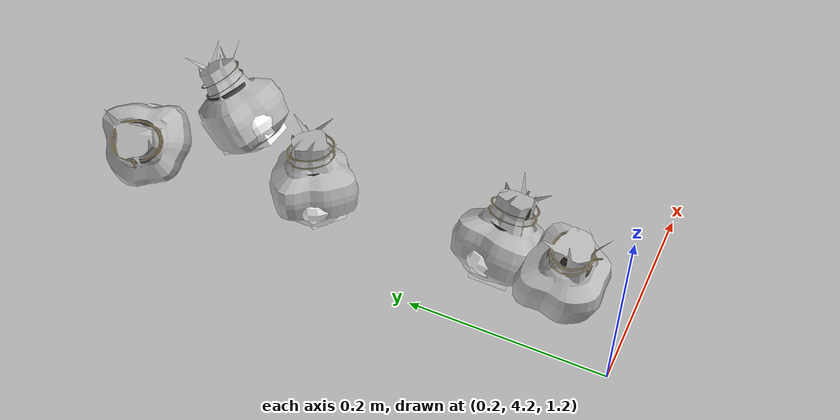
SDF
<sdf version="1.11">
 <world name="peach_orchard">
  <model name="ground">
   <static>true</static>
   <link name="link">
    <visual name="soil">
     <geometry><plane><normal>0 0 1</normal><size>32 22</size></plane></geometry>
     <material>
      <ambient>1 1 1 1</ambient>
      <diffuse>1 1 1 1</diffuse>
      <specular>0.1 0.1 0.1 1</specular>
      <pbr>
       <metal>
        <albedo_map>textures/soil_albedo.png</albedo_map>
        <normal_map type="tangent">textures/soil_normal.png</normal_map>
        <roughness>0.95</roughness>
        <metalness>0</metalness>
       </metal>
      </pbr>
     </material>
    </visual>
    <collision name="c_soil">
     <geometry><plane><normal>0 0 1</normal><size>32 22</size></plane></geometry>
    </collision>
   </link>
  </model>
  <model name="peach_tree_r2_t5_00">
   <pose>0.22 4.68335 1.27712 0 0.688618 -2.76887</pose>
   <static>true</static>
   <link name="bag">
    <visual name="bag_mesh">
     <pose>0 0 0.048431 0 0 -0</pose>
     <geometry>
      <mesh><uri>model://peach_sim/meshes/bagged_peach.glb</uri><scale>1.00445 1.20076 1.1007</scale></mesh>
     </geometry>
    </visual>
    <visual name="body">
     <pose>0 0 0.030431 0 0 0</pose>
     <geometry><ellipsoid><radii>0.0376667 0.0312199 0.0328654</radii></ellipsoid></geometry>
     <material>
      <ambient>1 1 1 1</ambient>
      <diffuse>1 1 1 1</diffuse>
      <specular>0.1 0.1 0.1 1</specular>
      <pbr>
       <metal>
        <albedo_map>textures/paper_bag_albedo.png</albedo_map>
        <normal_map type="tangent">textures/paper_bag_normal.png</normal_map>
        <roughness>0.72</roughness>
        <metalness>0</metalness>
       </metal>
      </pbr>
     </material>
    </visual>
    <visual name="bottom_fold">
     <pose>0 0 0.012 0 0 0.35</pose>
     <geometry><box><size>0.0583835 0.0359028 0.022</size></box></geometry>
     <material>
      <ambient>1 1 1 1</ambient>
      <diffuse>1 1 1 1</diffuse>
      <specular>0.1 0.1 0.1 1</specular>
      <pbr>
       <metal>
        <albedo_map>textures/paper_bag_albedo.png</albedo_map>
        <normal_map type="tangent">textures/paper_bag_normal.png</normal_map>
        <roughness>0.8</roughness>
        <metalness>0</metalness>
       </metal>
      </pbr>
     </material>
    </visual>
    <visual name="fruit">
     <pose>0 0 0.0210407 0 0 0</pose>
     <geometry><sphere><radius>0.0281223</radius></sphere></geometry>
     <material>
      <ambient>1 1 1 1</ambient>
      <diffuse>1 1 1 1</diffuse>
      <specular>0.1 0.1 0.1 1</specular>
      <pbr>
       <metal>
        <albedo_map>textures/fruit_skin_albedo.png</albedo_map>
        <normal_map type="tangent">textures/fruit_skin_normal.png</normal_map>
        <roughness>0.55</roughness>
        <metalness>0</metalness>
       </metal>
      </pbr>
     </material>
    </visual>
    <visual name="neck">
     <pose>0 0 0.0698619 0 0 0</pose>
     <geometry><cylinder><radius>0.013</radius><length>0.018</length></cylinder></geometry>
     <material>
      <ambient>1 1 1 1</ambient>
      <diffuse>1 1 1 1</diffuse>
      <specular>0.1 0.1 0.1 1</specular>
      <pbr>
       <metal>
        <albedo_map>textures/paper_bag_albedo.png</albedo_map>
        <normal_map type="tangent">textures/paper_bag_normal.png</normal_map>
        <roughness>0.75</roughness>
        <metalness>0</metalness>
       </metal>
      </pbr>
     </material>
    </visual>
    <visual name="gather">
     <pose>0 0 0.0508619 0 0 0</pose>
     <geometry><cylinder><radius>0.019</radius><length>0.02</length></cylinder></geometry>
     <material>
      <ambient>1 1 1 1</ambient>
      <diffuse>1 1 1 1</diffuse>
      <specular>0.1 0.1 0.1 1</specular>
      <pbr>
       <metal>
        <albedo_map>textures/paper_bag_albedo.png</albedo_map>
        <normal_map type="tangent">textures/paper_bag_normal.png</normal_map>
        <roughness>0.8</roughness>
        <metalness>0</metalness>
       </metal>
      </pbr>
     </material>
    </visual>
    <visual name="inner_paper">
     <pose>0 0 0.0748619 0 0 0</pose>
     <geometry><cylinder><radius>0.01</radius><length>0.008</length></cylinder></geometry>
     <material>
      <ambient>0.180392 0.14902 0.133333 1</ambient>
      <diffuse>0.180392 0.14902 0.133333 1</diffuse>
      <specular>0.1 0.1 0.1 1</specular>
     </material>
    </visual>
    <visual name="wire_0">
     <pose>0 0 0.0648619 0 0 0</pose>
     <geometry><cylinder><radius>0.0205</radius><length>0.0035</length></cylinder></geometry>
     <material>
      <ambient>0.25 0.25 0.25 1</ambient>
      <diffuse>0.25 0.25 0.25 1</diffuse>
      <specular>0.1 0.1 0.1 1</specular>
     </material>
    </visual>
    <visual name="wire_1">
     <pose>0 0 0.0718619 0 0 0</pose>
     <geometry><cylinder><radius>0.0205</radius><length>0.0035</length></cylinder></geometry>
     <material>
      <ambient>0.25 0.25 0.25 1</ambient>
      <diffuse>0.25 0.25 0.25 1</diffuse>
      <specular>0.1 0.1 0.1 1</specular>
     </material>
    </visual>
    <visual name="wire_tail">
     <pose>0.01 0 0.0728619 0 0.521618 0</pose>
     <geometry><cylinder><radius>0.0012</radius><length>0.026</length></cylinder></geometry>
     <material>
      <ambient>0.25 0.25 0.25 1</ambient>
      <diffuse>0.25 0.25 0.25 1</diffuse>
      <specular>0.1 0.1 0.1 1</specular>
     </material>
    </visual>
    <collision name="c_body">
     <pose>0 0 0.030431 0 0 0</pose>
     <geometry><cylinder><radius>0.0376667</radius><length>0.0608619</length></cylinder></geometry>
    </collision>
   </link>
  </model>
  <model name="peach_tree_r2_t5_01">
   <pose>0.22 4.50762 1.27 0 0.22135 0.567301</pose>
   <static>true</static>
   <link name="bag">
    <visual name="bag_mesh">
     <pose>0 0 0.0382302 0 0 0</pose>
     <geometry>
      <mesh><uri>model://peach_sim/meshes/bagged_peach.glb</uri><scale>1.0686 1.17646 0.868868</scale></mesh>
     </geometry>
    </visual>
    <visual name="body">
     <pose>0 0 0.0202302 0 0 0</pose>
     <geometry><ellipsoid><radii>0.0400726 0.030588 0.0218486</radii></ellipsoid></geometry>
     <material>
      <ambient>1 1 1 1</ambient>
      <diffuse>1 1 1 1</diffuse>
      <specular>0.1 0.1 0.1 1</specular>
      <pbr>
       <metal>
        <albedo_map>textures/paper_bag_albedo.png</albedo_map>
        <normal_map type="tangent">textures/paper_bag_normal.png</normal_map>
        <roughness>0.72</roughness>
        <metalness>0</metalness>
       </metal>
      </pbr>
     </material>
    </visual>
    <visual name="bottom_fold">
     <pose>0 0 0.012 0 0 0.35</pose>
     <geometry><box><size>0.0621125 0.0351762 0.022</size></box></geometry>
     <material>
      <ambient>1 1 1 1</ambient>
      <diffuse>1 1 1 1</diffuse>
      <specular>0.1 0.1 0.1 1</specular>
      <pbr>
       <metal>
        <albedo_map>textures/paper_bag_albedo.png</albedo_map>
        <normal_map type="tangent">textures/paper_bag_normal.png</normal_map>
        <roughness>0.8</roughness>
        <metalness>0</metalness>
       </metal>
      </pbr>
     </material>
    </visual>
    <visual name="fruit">
     <pose>0 0 0.0212001 0 0 0</pose>
     <geometry><sphere><radius>0.0282881</radius></sphere></geometry>
     <material>
      <ambient>1 1 1 1</ambient>
      <diffuse>1 1 1 1</diffuse>
      <specular>0.1 0.1 0.1 1</specular>
      <pbr>
       <metal>
        <albedo_map>textures/fruit_skin_albedo.png</albedo_map>
        <normal_map type="tangent">textures/fruit_skin_normal.png</normal_map>
        <roughness>0.55</roughness>
        <metalness>0</metalness>
       </metal>
      </pbr>
     </material>
    </visual>
    <visual name="neck">
     <pose>0 0 0.0494604 0 0 0</pose>
     <geometry><cylinder><radius>0.013</radius><length>0.018</length></cylinder></geometry>
     <material>
      <ambient>1 1 1 1</ambient>
      <diffuse>1 1 1 1</diffuse>
      <specular>0.1 0.1 0.1 1</specular>
      <pbr>
       <metal>
        <albedo_map>textures/paper_bag_albedo.png</albedo_map>
        <normal_map type="tangent">textures/paper_bag_normal.png</normal_map>
        <roughness>0.75</roughness>
        <metalness>0</metalness>
       </metal>
      </pbr>
     </material>
    </visual>
    <visual name="gather">
     <pose>0 0 0.0304604 0 0 0</pose>
     <geometry><cylinder><radius>0.019</radius><length>0.02</length></cylinder></geometry>
     <material>
      <ambient>1 1 1 1</ambient>
      <diffuse>1 1 1 1</diffuse>
      <specular>0.1 0.1 0.1 1</specular>
      <pbr>
       <metal>
        <albedo_map>textures/paper_bag_albedo.png</albedo_map>
        <normal_map type="tangent">textures/paper_bag_normal.png</normal_map>
        <roughness>0.8</roughness>
        <metalness>0</metalness>
       </metal>
      </pbr>
     </material>
    </visual>
    <visual name="inner_paper">
     <pose>0 0 0.0544604 0 0 0</pose>
     <geometry><cylinder><radius>0.01</radius><length>0.008</length></cylinder></geometry>
     <material>
      <ambient>0.180392 0.14902 0.133333 1</ambient>
      <diffuse>0.180392 0.14902 0.133333 1</diffuse>
      <specular>0.1 0.1 0.1 1</specular>
     </material>
    </visual>
    <visual name="wire_0">
     <pose>0 0 0.0444604 0 0 0</pose>
     <geometry><cylinder><radius>0.0205</radius><length>0.0035</length></cylinder></geometry>
     <material>
      <ambient>0.25 0.25 0.25 1</ambient>
      <diffuse>0.25 0.25 0.25 1</diffuse>
      <specular>0.1 0.1 0.1 1</specular>
     </material>
    </visual>
    <visual name="wire_1">
     <pose>0 0 0.0514604 0 0 0</pose>
     <geometry><cylinder><radius>0.0205</radius><length>0.0035</length></cylinder></geometry>
     <material>
      <ambient>0.25 0.25 0.25 1</ambient>
      <diffuse>0.25 0.25 0.25 1</diffuse>
      <specular>0.1 0.1 0.1 1</specular>
     </material>
    </visual>
    <visual name="wire_tail">
     <pose>0.01 0 0.0524604 0 0.521618 0</pose>
     <geometry><cylinder><radius>0.0012</radius><length>0.026</length></cylinder></geometry>
     <material>
      <ambient>0.25 0.25 0.25 1</ambient>
      <diffuse>0.25 0.25 0.25 1</diffuse>
      <specular>0.1 0.1 0.1 1</specular>
     </material>
    </visual>
    <collision name="c_body">
     <pose>0 0 0.0202302 0 0 0</pose>
     <geometry><cylinder><radius>0.0400726</radius><length>0.0404604</length></cylinder></geometry>
    </collision>
   </link>
  </model>
  <model name="peach_tree_r2_t5_02">
   <pose>0.22 4.32701 1.27 0 0.480086 -0.220831</pose>
   <static>true</static>
   <link name="bag">
    <visual name="bag_mesh">
     <pose>0 0 0.0381844 0 0 -0</pose>
     <geometry>
      <mesh><uri>model://peach_sim/meshes/bagged_peach.glb</uri><scale>1.03789 1.1995 0.867828</scale></mesh>
     </geometry>
    </visual>
    <visual name="body">
     <pose>0 0 0.0201844 0 0 0</pose>
     <geometry><ellipsoid><radii>0.0389208 0.031187 0.0217992</radii></ellipsoid></geometry>
     <material>
      <ambient>1 1 1 1</ambient>
      <diffuse>1 1 1 1</diffuse>
      <specular>0.1 0.1 0.1 1</specular>
      <pbr>
       <metal>
        <albedo_map>textures/paper_bag_albedo.png</albedo_map>
        <normal_map type="tangent">textures/paper_bag_normal.png</normal_map>
        <roughness>0.72</roughness>
        <metalness>0</metalness>
       </metal>
      </pbr>
     </material>
    </visual>
    <visual name="bottom_fold">
     <pose>0 0 0.012 0 0 0.35</pose>
     <geometry><box><size>0.0603272 0.0358651 0.022</size></box></geometry>
     <material>
      <ambient>1 1 1 1</ambient>
      <diffuse>1 1 1 1</diffuse>
      <specular>0.1 0.1 0.1 1</specular>
      <pbr>
       <metal>
        <albedo_map>textures/paper_bag_albedo.png</albedo_map>
        <normal_map type="tangent">textures/paper_bag_normal.png</normal_map>
        <roughness>0.8</roughness>
        <metalness>0</metalness>
       </metal>
      </pbr>
     </material>
    </visual>
    <visual name="fruit">
     <pose>0 0 0.0182649 0 0 0</pose>
     <geometry><sphere><radius>0.0252355</radius></sphere></geometry>
     <material>
      <ambient>1 1 1 1</ambient>
      <diffuse>1 1 1 1</diffuse>
      <specular>0.1 0.1 0.1 1</specular>
      <pbr>
       <metal>
        <albedo_map>textures/fruit_skin_albedo.png</albedo_map>
        <normal_map type="tangent">textures/fruit_skin_normal.png</normal_map>
        <roughness>0.55</roughness>
        <metalness>0</metalness>
       </metal>
      </pbr>
     </material>
    </visual>
    <visual name="neck">
     <pose>0 0 0.0493689 0 0 0</pose>
     <geometry><cylinder><radius>0.013</radius><length>0.018</length></cylinder></geometry>
     <material>
      <ambient>1 1 1 1</ambient>
      <diffuse>1 1 1 1</diffuse>
      <specular>0.1 0.1 0.1 1</specular>
      <pbr>
       <metal>
        <albedo_map>textures/paper_bag_albedo.png</albedo_map>
        <normal_map type="tangent">textures/paper_bag_normal.png</normal_map>
        <roughness>0.75</roughness>
        <metalness>0</metalness>
       </metal>
      </pbr>
     </material>
    </visual>
    <visual name="gather">
     <pose>0 0 0.0303689 0 0 0</pose>
     <geometry><cylinder><radius>0.019</radius><length>0.02</length></cylinder></geometry>
     <material>
      <ambient>1 1 1 1</ambient>
      <diffuse>1 1 1 1</diffuse>
      <specular>0.1 0.1 0.1 1</specular>
      <pbr>
       <metal>
        <albedo_map>textures/paper_bag_albedo.png</albedo_map>
        <normal_map type="tangent">textures/paper_bag_normal.png</normal_map>
        <roughness>0.8</roughness>
        <metalness>0</metalness>
       </metal>
      </pbr>
     </material>
    </visual>
    <visual name="inner_paper">
     <pose>0 0 0.0543689 0 0 0</pose>
     <geometry><cylinder><radius>0.01</radius><length>0.008</length></cylinder></geometry>
     <material>
      <ambient>0.180392 0.14902 0.133333 1</ambient>
      <diffuse>0.180392 0.14902 0.133333 1</diffuse>
      <specular>0.1 0.1 0.1 1</specular>
     </material>
    </visual>
    <visual name="wire_0">
     <pose>0 0 0.0443689 0 0 0</pose>
     <geometry><cylinder><radius>0.0205</radius><length>0.0035</length></cylinder></geometry>
     <material>
      <ambient>0.25 0.25 0.25 1</ambient>
      <diffuse>0.25 0.25 0.25 1</diffuse>
      <specular>0.1 0.1 0.1 1</specular>
     </material>
    </visual>
    <visual name="wire_1">
     <pose>0 0 0.0513689 0 0 0</pose>
     <geometry><cylinder><radius>0.0205</radius><length>0.0035</length></cylinder></geometry>
     <material>
      <ambient>0.25 0.25 0.25 1</ambient>
      <diffuse>0.25 0.25 0.25 1</diffuse>
      <specular>0.1 0.1 0.1 1</specular>
     </material>
    </visual>
    <visual name="wire_tail">
     <pose>0.01 0 0.0523689 0 0.521618 0</pose>
     <geometry><cylinder><radius>0.0012</radius><length>0.026</length></cylinder></geometry>
     <material>
      <ambient>0.25 0.25 0.25 1</ambient>
      <diffuse>0.25 0.25 0.25 1</diffuse>
      <specular>0.1 0.1 0.1 1</specular>
     </material>
    </visual>
    <collision name="c_body">
     <pose>0 0 0.0201844 0 0 0</pose>
     <geometry><cylinder><radius>0.0389208</radius><length>0.0403689</length></cylinder></geometry>
    </collision>
   </link>
  </model>
  <model name="peach_tree_r2_t5_03">
   <pose>0.22 4.2646 1.27 0 0.158091 -1.73665</pose>
   <static>true</static>
   <link name="bag">
    <visual name="bag_mesh">
     <pose>0 0 0.0405151 0 0 -0</pose>
     <geometry>
      <mesh><uri>model://peach_sim/meshes/bagged_peach.glb</uri><scale>1.00688 1.23734 0.920797</scale></mesh>
     </geometry>
    </visual>
    <visual name="body">
     <pose>0 0 0.0225151 0 0 0</pose>
     <geometry><ellipsoid><radii>0.037758 0.0321709 0.0243163</radii></ellipsoid></geometry>
     <material>
      <ambient>1 1 1 1</ambient>
      <diffuse>1 1 1 1</diffuse>
      <specular>0.1 0.1 0.1 1</specular>
      <pbr>
       <metal>
        <albedo_map>textures/paper_bag_albedo.png</albedo_map>
        <normal_map type="tangent">textures/paper_bag_normal.png</normal_map>
        <roughness>0.72</roughness>
        <metalness>0</metalness>
       </metal>
      </pbr>
     </material>
    </visual>
    <visual name="bottom_fold">
     <pose>0 0 0.012 0 0 0.35</pose>
     <geometry><box><size>0.0585249 0.0369966 0.022</size></box></geometry>
     <material>
      <ambient>1 1 1 1</ambient>
      <diffuse>1 1 1 1</diffuse>
      <specular>0.1 0.1 0.1 1</specular>
      <pbr>
       <metal>
        <albedo_map>textures/paper_bag_albedo.png</albedo_map>
        <normal_map type="tangent">textures/paper_bag_normal.png</normal_map>
        <roughness>0.8</roughness>
        <metalness>0</metalness>
       </metal>
      </pbr>
     </material>
    </visual>
    <visual name="fruit">
     <pose>0 0 0.019938 0 0 0</pose>
     <geometry><sphere><radius>0.0269755</radius></sphere></geometry>
     <material>
      <ambient>1 1 1 1</ambient>
      <diffuse>1 1 1 1</diffuse>
      <specular>0.1 0.1 0.1 1</specular>
      <pbr>
       <metal>
        <albedo_map>textures/fruit_skin_albedo.png</albedo_map>
        <normal_map type="tangent">textures/fruit_skin_normal.png</normal_map>
        <roughness>0.55</roughness>
        <metalness>0</metalness>
       </metal>
      </pbr>
     </material>
    </visual>
    <visual name="neck">
     <pose>0 0 0.0540302 0 0 0</pose>
     <geometry><cylinder><radius>0.013</radius><length>0.018</length></cylinder></geometry>
     <material>
      <ambient>1 1 1 1</ambient>
      <diffuse>1 1 1 1</diffuse>
      <specular>0.1 0.1 0.1 1</specular>
      <pbr>
       <metal>
        <albedo_map>textures/paper_bag_albedo.png</albedo_map>
        <normal_map type="tangent">textures/paper_bag_normal.png</normal_map>
        <roughness>0.75</roughness>
        <metalness>0</metalness>
       </metal>
      </pbr>
     </material>
    </visual>
    <visual name="gather">
     <pose>0 0 0.0350302 0 0 0</pose>
     <geometry><cylinder><radius>0.019</radius><length>0.02</length></cylinder></geometry>
     <material>
      <ambient>1 1 1 1</ambient>
      <diffuse>1 1 1 1</diffuse>
      <specular>0.1 0.1 0.1 1</specular>
      <pbr>
       <metal>
        <albedo_map>textures/paper_bag_albedo.png</albedo_map>
        <normal_map type="tangent">textures/paper_bag_normal.png</normal_map>
        <roughness>0.8</roughness>
        <metalness>0</metalness>
       </metal>
      </pbr>
     </material>
    </visual>
    <visual name="inner_paper">
     <pose>0 0 0.0590302 0 0 0</pose>
     <geometry><cylinder><radius>0.01</radius><length>0.008</length></cylinder></geometry>
     <material>
      <ambient>0.180392 0.14902 0.133333 1</ambient>
      <diffuse>0.180392 0.14902 0.133333 1</diffuse>
      <specular>0.1 0.1 0.1 1</specular>
     </material>
    </visual>
    <visual name="wire_0">
     <pose>0 0 0.0490302 0 0 0</pose>
     <geometry><cylinder><radius>0.0205</radius><length>0.0035</length></cylinder></geometry>
     <material>
      <ambient>0.25 0.25 0.25 1</ambient>
      <diffuse>0.25 0.25 0.25 1</diffuse>
      <specular>0.1 0.1 0.1 1</specular>
     </material>
    </visual>
    <visual name="wire_1">
     <pose>0 0 0.0560302 0 0 0</pose>
     <geometry><cylinder><radius>0.0205</radius><length>0.0035</length></cylinder></geometry>
     <material>
      <ambient>0.25 0.25 0.25 1</ambient>
      <diffuse>0.25 0.25 0.25 1</diffuse>
      <specular>0.1 0.1 0.1 1</specular>
     </material>
    </visual>
    <visual name="wire_tail">
     <pose>0.01 0 0.0570302 0 0.521618 0</pose>
     <geometry><cylinder><radius>0.0012</radius><length>0.026</length></cylinder></geometry>
     <material>
      <ambient>0.25 0.25 0.25 1</ambient>
      <diffuse>0.25 0.25 0.25 1</diffuse>
      <specular>0.1 0.1 0.1 1</specular>
     </material>
    </visual>
    <collision name="c_body">
     <pose>0 0 0.0225151 0 0 0</pose>
     <geometry><cylinder><radius>0.037758</radius><length>0.0450302</length></cylinder></geometry>
    </collision>
   </link>
  </model>
  <model name="peach_tree_r2_t5_05">
   <pose>0.243657 4.58069 1.30341 0 0.611879 1.24583</pose>
   <static>true</static>
   <link name="bag">
    <visual name="bag_mesh">
     <pose>0 0 0.0423617 0 0 0</pose>
     <geometry>
      <mesh><uri>model://peach_sim/meshes/bagged_peach.glb</uri><scale>0.995335 1.10154 0.962767</scale></mesh>
     </geometry>
    </visual>
    <visual name="body">
     <pose>0 0 0.0243617 0 0 0</pose>
     <geometry><ellipsoid><radii>0.037325 0.0286401 0.0263107</radii></ellipsoid></geometry>
     <material>
      <ambient>1 1 1 1</ambient>
      <diffuse>1 1 1 1</diffuse>
      <specular>0.1 0.1 0.1 1</specular>
      <pbr>
       <metal>
        <albedo_map>textures/paper_bag_albedo.png</albedo_map>
        <normal_map type="tangent">textures/paper_bag_normal.png</normal_map>
        <roughness>0.72</roughness>
        <metalness>0</metalness>
       </metal>
      </pbr>
     </material>
    </visual>
    <visual name="bottom_fold">
     <pose>0 0 0.012 0 0 0.35</pose>
     <geometry><box><size>0.0578538 0.0329361 0.022</size></box></geometry>
     <material>
      <ambient>1 1 1 1</ambient>
      <diffuse>1 1 1 1</diffuse>
      <specular>0.1 0.1 0.1 1</specular>
      <pbr>
       <metal>
        <albedo_map>textures/paper_bag_albedo.png</albedo_map>
        <normal_map type="tangent">textures/paper_bag_normal.png</normal_map>
        <roughness>0.8</roughness>
        <metalness>0</metalness>
       </metal>
      </pbr>
     </material>
    </visual>
    <visual name="fruit">
     <pose>0 0 0.0185591 0 0 0</pose>
     <geometry><sphere><radius>0.0255415</radius></sphere></geometry>
     <material>
      <ambient>1 1 1 1</ambient>
      <diffuse>1 1 1 1</diffuse>
      <specular>0.1 0.1 0.1 1</specular>
      <pbr>
       <metal>
        <albedo_map>textures/fruit_skin_albedo.png</albedo_map>
        <normal_map type="tangent">textures/fruit_skin_normal.png</normal_map>
        <roughness>0.55</roughness>
        <metalness>0</metalness>
       </metal>
      </pbr>
     </material>
    </visual>
    <visual name="neck">
     <pose>0 0 0.0577235 0 0 0</pose>
     <geometry><cylinder><radius>0.013</radius><length>0.018</length></cylinder></geometry>
     <material>
      <ambient>1 1 1 1</ambient>
      <diffuse>1 1 1 1</diffuse>
      <specular>0.1 0.1 0.1 1</specular>
      <pbr>
       <metal>
        <albedo_map>textures/paper_bag_albedo.png</albedo_map>
        <normal_map type="tangent">textures/paper_bag_normal.png</normal_map>
        <roughness>0.75</roughness>
        <metalness>0</metalness>
       </metal>
      </pbr>
     </material>
    </visual>
    <visual name="gather">
     <pose>0 0 0.0387235 0 0 0</pose>
     <geometry><cylinder><radius>0.019</radius><length>0.02</length></cylinder></geometry>
     <material>
      <ambient>1 1 1 1</ambient>
      <diffuse>1 1 1 1</diffuse>
      <specular>0.1 0.1 0.1 1</specular>
      <pbr>
       <metal>
        <albedo_map>textures/paper_bag_albedo.png</albedo_map>
        <normal_map type="tangent">textures/paper_bag_normal.png</normal_map>
        <roughness>0.8</roughness>
        <metalness>0</metalness>
       </metal>
      </pbr>
     </material>
    </visual>
    <visual name="inner_paper">
     <pose>0 0 0.0627235 0 0 0</pose>
     <geometry><cylinder><radius>0.01</radius><length>0.008</length></cylinder></geometry>
     <material>
      <ambient>0.180392 0.14902 0.133333 1</ambient>
      <diffuse>0.180392 0.14902 0.133333 1</diffuse>
      <specular>0.1 0.1 0.1 1</specular>
     </material>
    </visual>
    <visual name="wire_0">
     <pose>0 0 0.0527235 0 0 0</pose>
     <geometry><cylinder><radius>0.0205</radius><length>0.0035</length></cylinder></geometry>
     <material>
      <ambient>0.25 0.25 0.25 1</ambient>
      <diffuse>0.25 0.25 0.25 1</diffuse>
      <specular>0.1 0.1 0.1 1</specular>
     </material>
    </visual>
    <visual name="wire_1">
     <pose>0 0 0.0597235 0 0 0</pose>
     <geometry><cylinder><radius>0.0205</radius><length>0.0035</length></cylinder></geometry>
     <material>
      <ambient>0.25 0.25 0.25 1</ambient>
      <diffuse>0.25 0.25 0.25 1</diffuse>
      <specular>0.1 0.1 0.1 1</specular>
     </material>
    </visual>
    <visual name="wire_tail">
     <pose>0.01 0 0.0607235 0 0.521618 0</pose>
     <geometry><cylinder><radius>0.0012</radius><length>0.026</length></cylinder></geometry>
     <material>
      <ambient>0.25 0.25 0.25 1</ambient>
      <diffuse>0.25 0.25 0.25 1</diffuse>
      <specular>0.1 0.1 0.1 1</specular>
     </material>
    </visual>
    <collision name="c_body">
     <pose>0 0 0.0243617 0 0 0</pose>
     <geometry><cylinder><radius>0.037325</radius><length>0.0487235</length></cylinder></geometry>
    </collision>
   </link>
  </model>
 </world>
</sdf>
